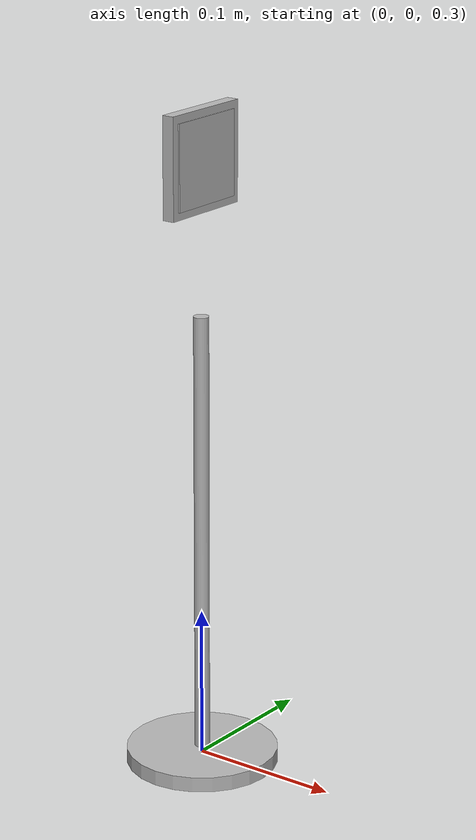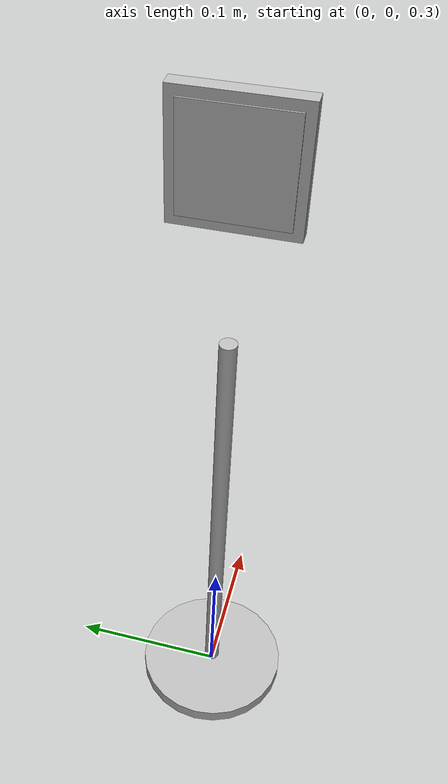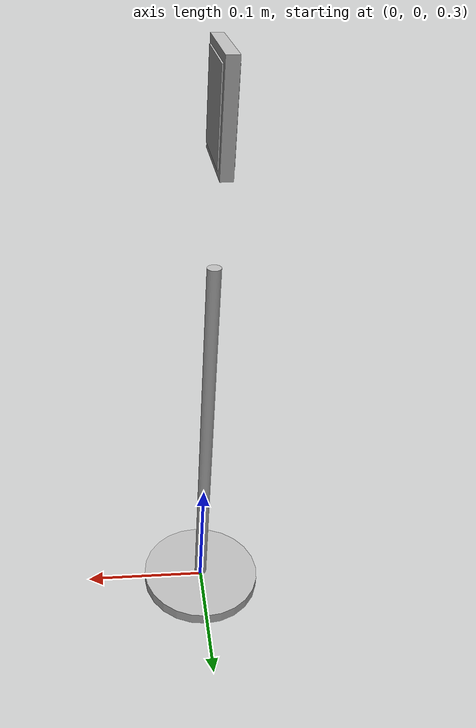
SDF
<?xml version="1.0" ?>
<sdf version="1.6">
<model name="pickable_object">
	<static>false</static>

	<!-- Global pose -->
	<pose>0 0 0.3 0 0 0</pose>

	<link name="object">

		<!-- Minimal inertial values -->
		<inertial>
			<mass>0.05</mass>
			<inertia>
				<ixx>1e-5</ixx>
				<iyy>1e-5</iyy>
				<izz>1e-5</izz>
			</inertia>
		</inertial>

		<!-- Collision -->
		<collision name="collision_base">
			<geometry>
				<cylinder>
					<radius>0.05</radius>
					<length>0.01</length>
				</cylinder>
			</geometry>
		</collision>

		<collision name="collision_pole">
			<pose>0 0 0.15 0 0 0</pose>
			<geometry>
				<cylinder>
					<radius>0.005</radius>
					<length>0.3</length>
				</cylinder>
			</geometry>
		</collision>

		<!-- Visual -->
		<visual name="visual_base">
			<geometry>
				<cylinder>
					<radius>0.05</radius>
					<length>0.01</length>
				</cylinder>
			</geometry>
		</visual>

		<visual name="visual_pole">
			<pose>0 0 0.15 0 0 0</pose>
			<geometry>
				<cylinder>
					<radius>0.005</radius>
					<length>0.3</length>
				</cylinder>
			</geometry>
		</visual>

		<!-- Marker set precisely 40cm - 30/2cm = 25cm above center of object -->
		<visual name="visual-mesh">
			<pose>0 0 0.4 0 0 1.57</pose>
			<geometry>
				<mesh>
					<uri>model://aruco_marker/meshes/ArUcoMarker.dae</uri>
				</mesh>
			</geometry>
		</visual>

		<visual name="visual-frame">
			<pose>0 0 0.4 1.57 0 0</pose>
			<geometry>
				<box>
					<size>0.008 0.065 0.065</size>
				</box>
			</geometry>
		</visual>

	</link>

</model>
</sdf>
